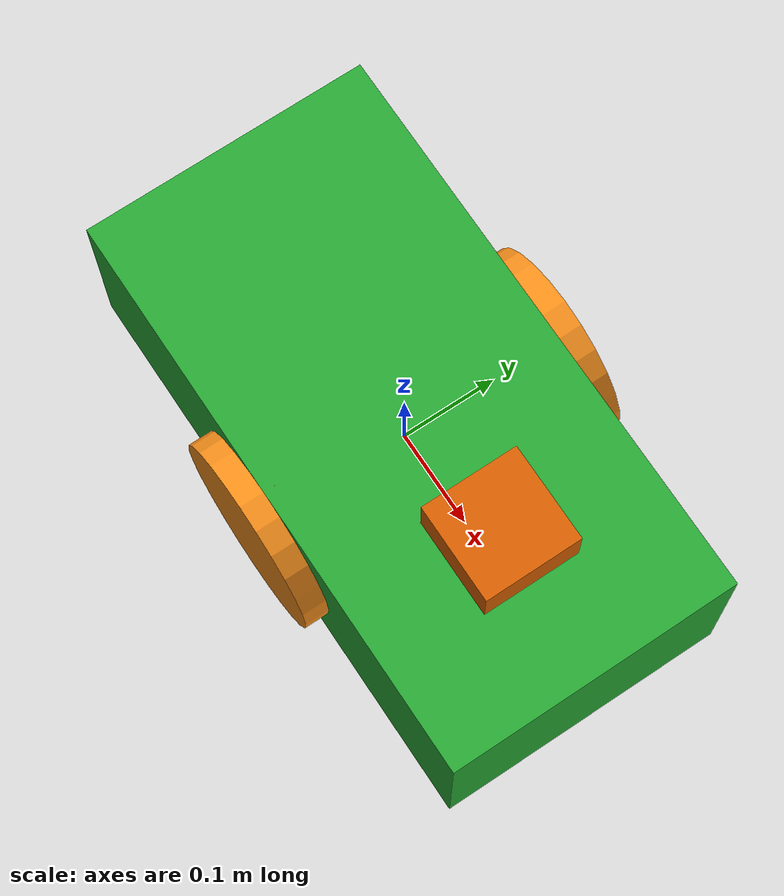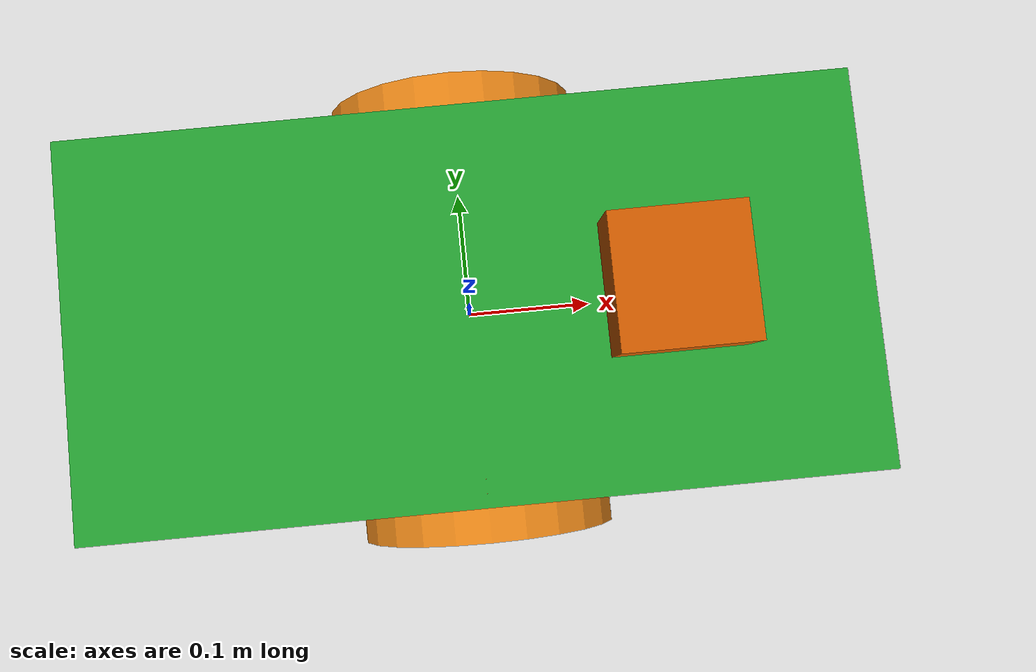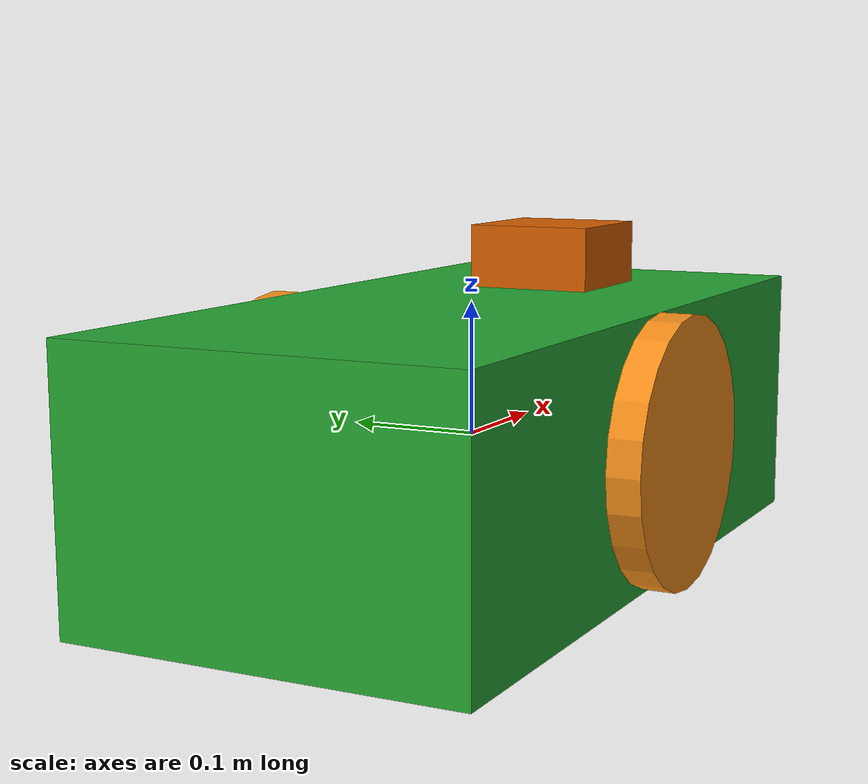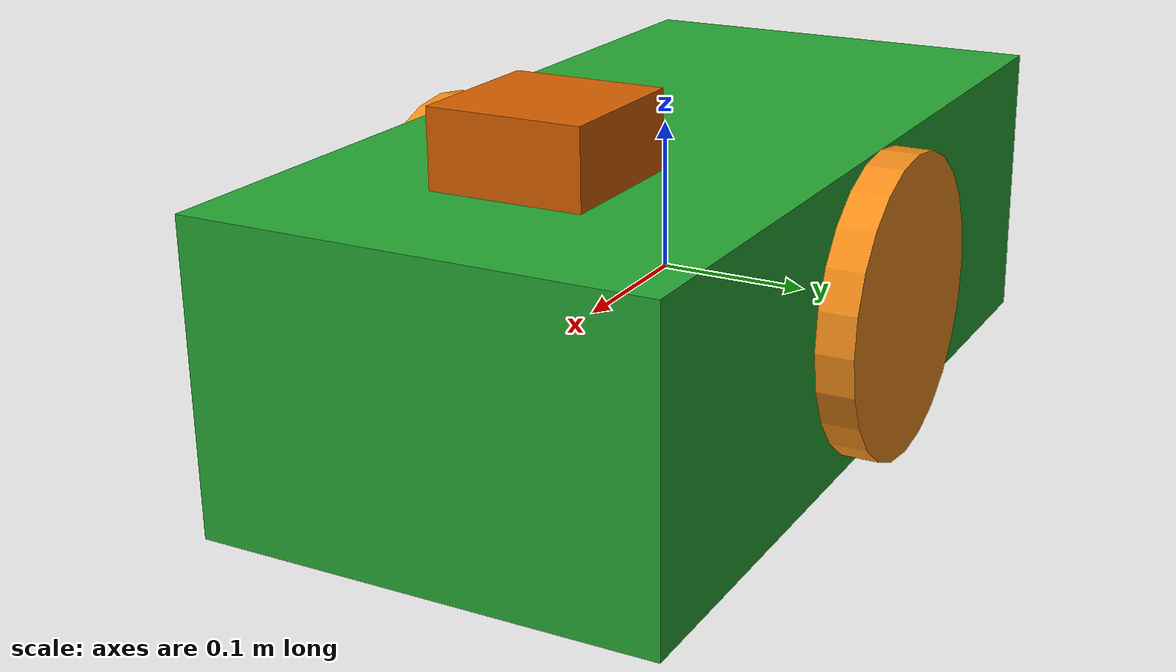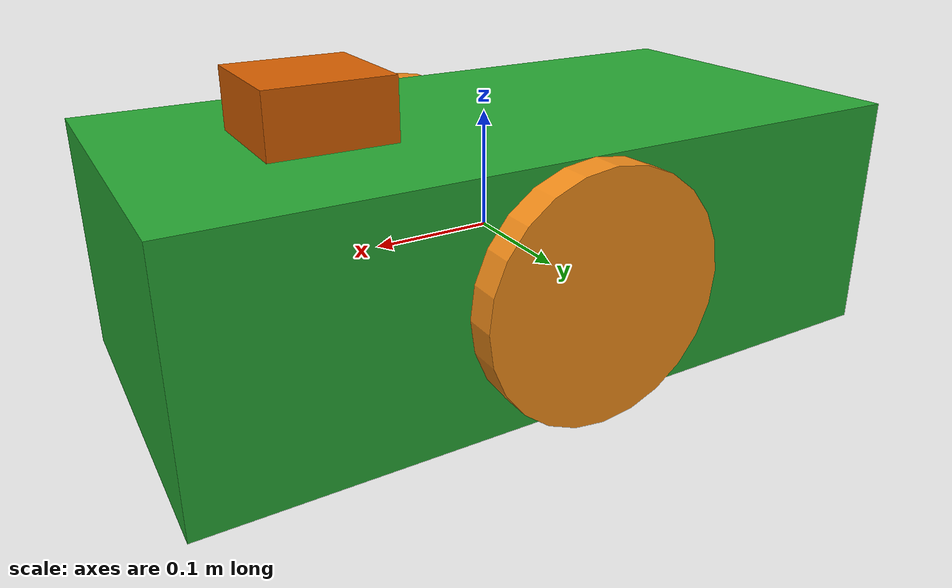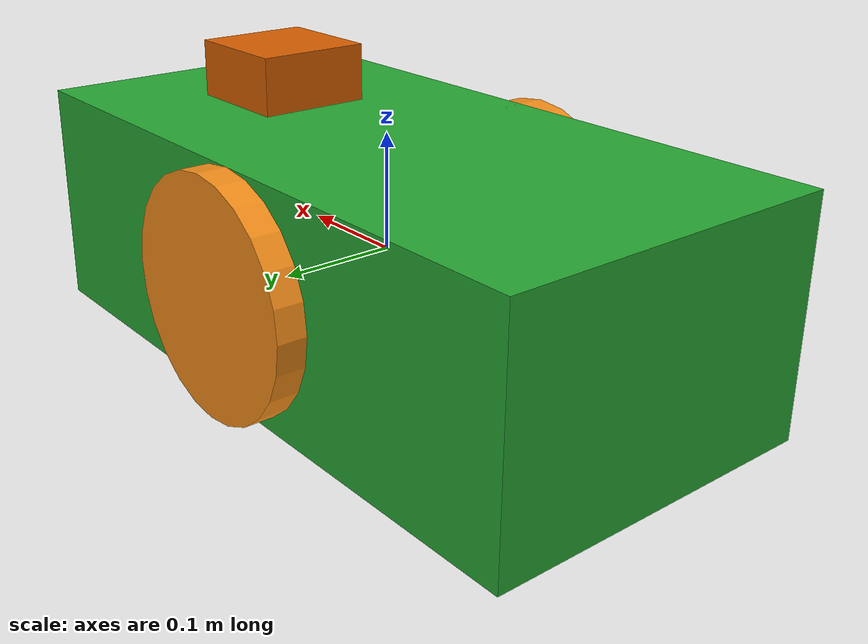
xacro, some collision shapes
<?xml version='1.0'?>

<robot name="my_robot" xmlns:xacro="http://www.ros.org/wiki/xacro">
<xacro:include filename="$(find my_robot)/urdf/my_robot.gazebo" />

  <!-- Robot Footprint (SHADOW) -->
  <link name="robot_footprint"></link>

  <joint name="robot_footprint_joint" type="fixed">
    <origin xyz="0 0 0" rpy="0 0 0" />
    <parent link="robot_footprint"/>
    <child link="chassis" />
  </joint>

  <!-- Chassis -->
  <link name='chassis'>
    <pose>0 0 0.1 0 0 0</pose>

    <inertial>
      <mass value="18.0"/>
      <origin xyz="0.0 0 0" rpy=" 0 0 0"/>
      <inertia
          ixx="0.1" ixy="0" ixz="0"
          iyy="0.1" iyz="0"
          izz="0.1"
      />
    </inertial>

    <collision name='collision'>
      <origin xyz="0 0 0" rpy=" 0 0 0"/>
      <geometry>
        <box size=".6 .3 .2"/>
      </geometry>
    </collision>

    <visual name='chassis_visual'>
      <origin xyz="0 0 0" rpy=" 0 0 0"/>
      <geometry>
        <box size=".6 .3 .2"/>
      </geometry>
    </visual>

    <collision name='back_caster_collision'>
      <origin xyz="-0.15 0 -0.06" rpy=" 0 0 0"/>
      <geometry>
        <sphere radius="0.0399"/>
      </geometry>
    </collision>

    <visual name='back_caster_visual'>
      <origin xyz="-0.15 0 -0.06" rpy=" 0 0 0"/>
      <geometry>
        <sphere radius="0.04"/>
      </geometry>
    </visual>

    <collision name='front_caster_collision'>
      <origin xyz="0.15 0 -0.06" rpy=" 0 0 0"/>
      <geometry>
        <sphere radius="0.0399"/>
      </geometry>
    </collision>

    <visual name='front_caster_visual'>
      <origin xyz="0.15 0 -0.06" rpy=" 0 0 0"/>
      <geometry>
        <sphere radius="0.04"/>
      </geometry>
    </visual>

  </link>

  <gazebo reference="chassis">
    <material>Gazebo/Green</material>
  </gazebo>

  <!-- Left wheel -->
  <link name='left_wheel'>

    <inertial>
      <mass value="5.0"/>
      <origin xyz="0 0 0" rpy="0 1.5707 1.5707"/>
      <inertia
          ixx="0.1" ixy="0" ixz="0"
          iyy="0.1" iyz="0"
          izz="0.1"
      />
    </inertial>

    <collision name='left_wheel_collision'>
      <origin xyz="0 0 0" rpy="0 1.5707 1.5707"/>
      <geometry>
        <cylinder length="0.05" radius="0.1"/>
      </geometry>
    </collision>

    <visual name='left_wheel_visual'>
      <origin xyz="0 0 0" rpy="0 1.5707 1.5707"/>
      <geometry>
        <cylinder length="0.05" radius="0.1"/>
      </geometry>
    </visual>

  </link>

  <joint type="continuous" name="left_wheel_hinge">
    <origin xyz="0 0.15 0" rpy="0 0 0"/>
    <child link="left_wheel"/>
    <parent link="chassis"/>
    <axis xyz="0 1 0" rpy="0 0 0"/>
    <limit effort="10000" velocity="1000"/>
    <dynamics damping="1.0" friction="1.0"/>
  </joint>

  <gazebo reference="left_wheel">
    <material>Gazebo/Orange</material>
  </gazebo>

  <!-- Right wheel -->
  <link name='right_wheel'>

    <inertial>
      <mass value="5.0"/>
      <origin xyz="0 0 0" rpy="0 1.5707 1.5707"/>
      <inertia
          ixx="0.1" ixy="0" ixz="0"
          iyy="0.1" iyz="0"
          izz="0.1"
      />
    </inertial>

    <collision name='right_wheel_collision'>
      <origin xyz="0 0 0" rpy="0 1.5707 1.5707"/>
      <geometry>
        <cylinder length="0.05" radius="0.1"/>
      </geometry>
    </collision>

    <visual name='right_wheel_visual'>
      <origin xyz="0 0 0" rpy="0 1.5707 1.5707"/>
      <geometry>
        <cylinder length="0.05" radius="0.1"/>
      </geometry>
    </visual>

  </link>

  <joint type="continuous" name="right_wheel_hinge">
    <origin xyz="0 -0.15 0" rpy="0 0 0"/>
    <child link="right_wheel"/>
    <parent link="chassis"/>
    <axis xyz="0 1 0" rpy="0 0 0"/>
    <limit effort="10000" velocity="1000"/>
    <dynamics damping="1.0" friction="1.0"/>
  </joint>

  <gazebo reference="right_wheel">
    <material>Gazebo/Orange</material>
  </gazebo>

  <!-- Camera -->
  <link name='camera'>
    <inertial>
      <mass value="0.1"/>
      <origin xyz="0 0 0" rpy=" 0 0 0"/>
      <inertia
          ixx="1e-6" ixy="0" ixz="0"
          iyy="1e-6" iyz="0"
          izz="1e-6"
      />
    </inertial>

    <collision name='camera_collision'>
      <origin xyz="0 0 0" rpy=" 0 0 0"/>
      <geometry>
        <box size="0.05 0.05 0.05"/>
      </geometry>
    </collision>

    <visual name='camera_visual'>
      <origin xyz="0 0 0" rpy=" 0 0 0"/>
      <geometry>
        <box size="0.05 0.05 0.05"/>
      </geometry>
    </visual>
  </link>

  <joint name="camera_joint" type="fixed">
    <axis xyz="0 1 0" rpy="0 0 0"/>
    <origin xyz="0.2 0 0" rpy="0 0 0" />
    <parent link="chassis"/>
    <child link="camera" />
  </joint>

  <gazebo reference="camera">
    <material>Gazebo/Red</material>
  </gazebo>

  <!-- Lidar -->
  <link name='hokuyo'>
    <inertial>
      <mass value="1e-5"/>
      <origin xyz="0 0 0" rpy=" 0 0 0"/>
      <inertia
          ixx="1e-6" ixy="0" ixz="0"
          iyy="1e-6" iyz="0"
          izz="1e-6"
      />
    </inertial>

    <collision name='camera_collision'>
      <origin xyz="0 0 0" rpy=" 0 0 0"/>
      <geometry>
        <box size="0.1 0.1 0.1"/>
      </geometry>
    </collision>

    <visual name='camera_visual'>
      <origin xyz="0 0 0" rpy=" 0 0 0"/>
      <geometry>
        <mesh filename = "package://my_robot/meshes/hokuyo.dae"/>
      </geometry>
    </visual>
  </link>

  <joint name="hokuyo_joint" type="fixed">
    <axis xyz="0 1 0" rpy="0 0 0"/>
    <origin xyz="0.15 0 0.1" rpy="0 0 0" />
    <parent link="chassis"/>
    <child link="hokuyo" />
  </joint>

</robot>
